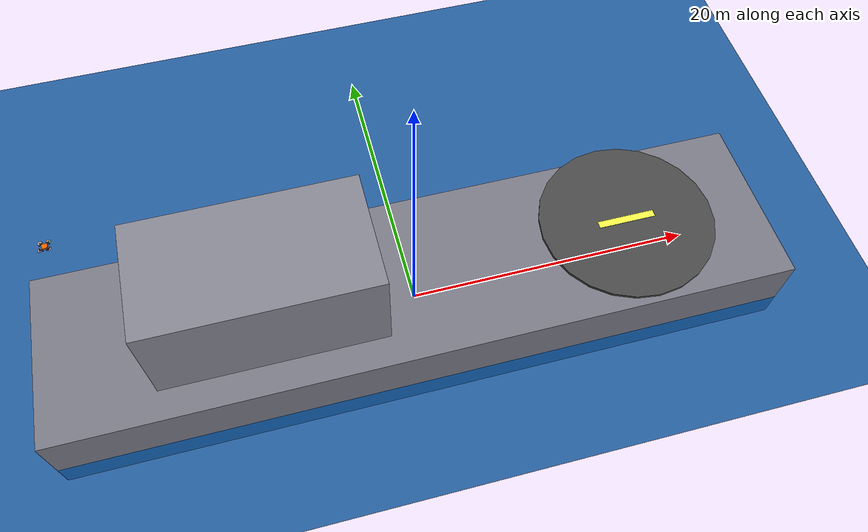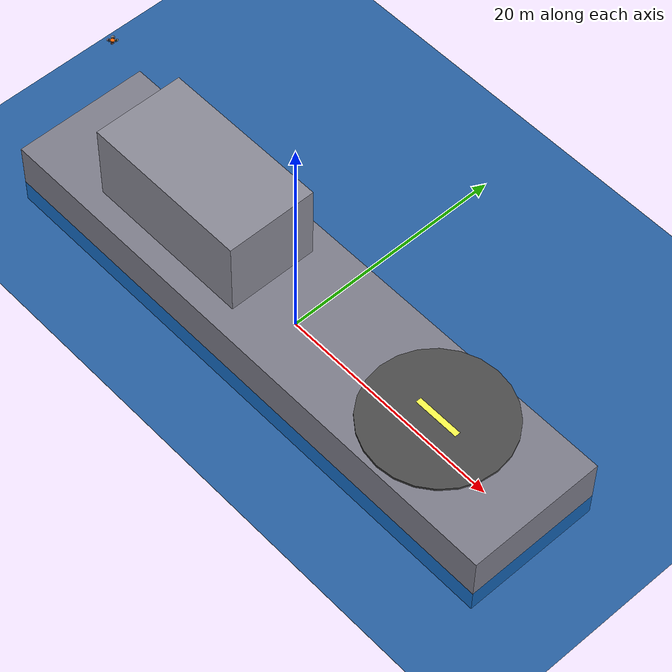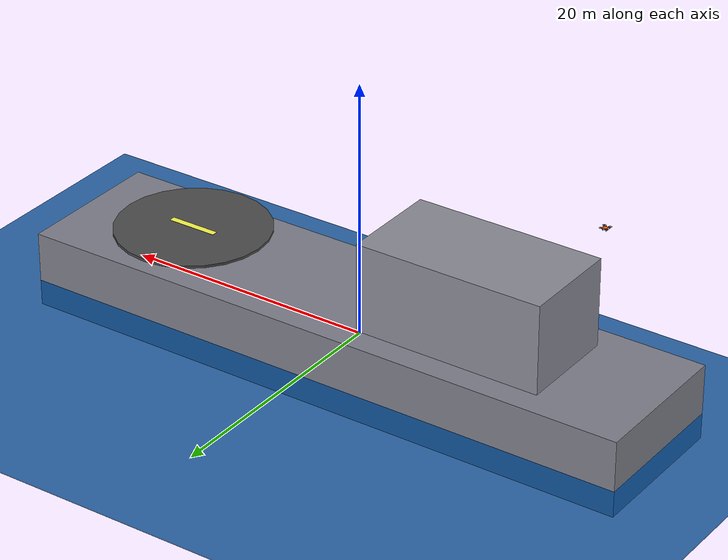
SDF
<?xml version="1.0" ?>
<sdf version="1.9">
  <world name="ship_landing_debug">

    <!-- Core system plugins -->
    <plugin filename="gz-sim-physics-system" name="gz::sim::systems::Physics"/>
    <plugin filename="gz-sim-scene-broadcaster-system" name="gz::sim::systems::SceneBroadcaster"/>
    <plugin filename="gz-sim-user-commands-system" name="gz::sim::systems::UserCommands"/>
    <plugin filename="gz-sim-sensors-system" name="gz::sim::systems::Sensors">
      <render_engine>ogre</render_engine>
    </plugin>
    <plugin filename="gz-sim-apply-link-wrench-system" name="gz::sim::systems::ApplyLinkWrench"/>
    <plugin filename="gz-sim-contact-system" name="gz::sim::systems::Contact"/>

    <!-- Physics - smaller step for stability -->
    <physics name="default_physics" type="dart">
      <max_step_size>0.001</max_step_size>
      <real_time_factor>1</real_time_factor>
      <real_time_update_rate>1000</real_time_update_rate>
      <dart>
        <collision_detector>bullet</collision_detector>
      </dart>
    </physics>

    <!-- Scene -->
    <scene>
      <ambient>0.6 0.6 0.7 1</ambient>
      <background>0.4 0.5 0.6 1</background>
      <shadows>true</shadows>
    </scene>

    <light type="directional" name="sun">
      <cast_shadows>true</cast_shadows>
      <pose>0 0 100 0 0 0</pose>
      <diffuse>0.8 0.8 0.8 1</diffuse>
      <specular>0.3 0.3 0.3 1</specular>
      <direction>-0.5 0.3 -1</direction>
    </light>

    <!-- Ocean visual -->
    <model name="ocean">
      <static>true</static>
      <pose>0 0 -1 0 0 0</pose>
      <link name="link">
        <visual name="water">
          <geometry>
            <box><size>500 500 0.1</size></box>
          </geometry>
          <material>
            <ambient>0.0 0.2 0.4 0.8</ambient>
            <diffuse>0.0 0.3 0.6 0.8</diffuse>
          </material>
        </visual>
      </link>
    </model>

    <!-- Ship with PosePublisher -->
    <model name="ship">
      <static>true</static>
      <pose>0 0 0 0 0 0</pose>

      <!-- Pose Publisher Plugin - broadcasts ship pose -->
      <plugin filename="gz-sim-pose-publisher-system"
              name="gz::sim::systems::PosePublisher">
        <publish_link_pose>true</publish_link_pose>
        <publish_model_pose>true</publish_model_pose>
        <publish_nested_model_pose>false</publish_nested_model_pose>
        <use_pose_vector_msg>true</use_pose_vector_msg>
        <update_frequency>50</update_frequency>
      </plugin>

      <link name="hull">
        <inertial>
          <mass>100000</mass>
          <inertia>
            <ixx>1000000</ixx>
            <iyy>5000000</iyy>
            <izz>5000000</izz>
          </inertia>
        </inertial>

        <!-- Main hull collision -->
        <collision name="hull_collision">
          <pose>0 0 0 0 0 0</pose>
          <geometry>
            <box><size>50 12 6</size></box>
          </geometry>
          <surface>
            <friction>
              <ode>
                <mu>1.0</mu>
                <mu2>1.0</mu2>
              </ode>
            </friction>
            <contact>
              <ode>
                <kp>1e6</kp>
                <kd>100</kd>
              </ode>
            </contact>
          </surface>
        </collision>

        <!-- Deck collision - high friction for landing -->
        <collision name="deck_collision">
          <pose>0 0 3.5 0 0 0</pose>
          <geometry>
            <box><size>50 12 1</size></box>
          </geometry>
          <surface>
            <friction>
              <ode>
                <mu>2.0</mu>
                <mu2>2.0</mu2>
                <fdir1>1 0 0</fdir1>
              </ode>
              <bullet>
                <friction>2.0</friction>
                <friction2>2.0</friction2>
              </bullet>
            </friction>
            <contact>
              <ode>
                <kp>5e5</kp>
                <kd>500</kd>
                <max_vel>0.1</max_vel>
                <min_depth>0.001</min_depth>
              </ode>
              <bullet>
                <soft_cfm>0.001</soft_cfm>
                <soft_erp>0.8</soft_erp>
              </bullet>
            </contact>
            <bounce>
              <restitution_coefficient>0.1</restitution_coefficient>
              <threshold>0.5</threshold>
            </bounce>
          </surface>
        </collision>

        <!-- Helipad collision - very high friction -->
        <collision name="helipad_collision">
          <pose>15 0 4.1 0 0 0</pose>
          <geometry>
            <cylinder>
              <radius>6</radius>
              <length>0.2</length>
            </cylinder>
          </geometry>
          <surface>
            <friction>
              <ode>
                <mu>3.0</mu>
                <mu2>3.0</mu2>
              </ode>
            </friction>
            <contact>
              <ode>
                <kp>5e5</kp>
                <kd>500</kd>
                <max_vel>0.05</max_vel>
                <min_depth>0.001</min_depth>
              </ode>
            </contact>
            <bounce>
              <restitution_coefficient>0.05</restitution_coefficient>
              <threshold>0.3</threshold>
            </bounce>
          </surface>
        </collision>

        <!-- Hull visual -->
        <visual name="hull_visual">
          <pose>0 0 0 0 0 0</pose>
          <geometry>
            <box><size>50 12 6</size></box>
          </geometry>
          <material>
            <ambient>0.3 0.3 0.35 1</ambient>
            <diffuse>0.5 0.5 0.55 1</diffuse>
          </material>
        </visual>

        <!-- Superstructure -->
        <visual name="superstructure">
          <pose>-10 0 6 0 0 0</pose>
          <geometry>
            <box><size>15 8 8</size></box>
          </geometry>
          <material>
            <ambient>0.35 0.35 0.4 1</ambient>
            <diffuse>0.55 0.55 0.6 1</diffuse>
          </material>
        </visual>

        <!-- Helipad -->
        <visual name="helipad">
          <pose>15 0 4.0 0 0 0</pose>
          <geometry>
            <cylinder>
              <radius>6</radius>
              <length>0.2</length>
            </cylinder>
          </geometry>
          <material>
            <ambient>0.2 0.2 0.2 1</ambient>
            <diffuse>0.3 0.3 0.3 1</diffuse>
          </material>
        </visual>

        <!-- Helipad H marking -->
        <visual name="helipad_h">
          <pose>15 0 4.11 0 0 0</pose>
          <geometry>
            <box><size>4 0.5 0.01</size></box>
          </geometry>
          <material>
            <ambient>0.9 0.9 0.2 1</ambient>
            <diffuse>1.0 1.0 0.3 1</diffuse>
          </material>
        </visual>
      </link>
    </model>

    <!-- Quadcopter with contact sensor and pose publisher -->
    <model name="quadcopter">
      <pose>-20 0 15 0 0 0</pose>

      <!-- Pose Publisher for quadcopter -->
      <plugin filename="gz-sim-pose-publisher-system"
              name="gz::sim::systems::PosePublisher">
        <publish_link_pose>true</publish_link_pose>
        <publish_model_pose>true</publish_model_pose>
        <use_pose_vector_msg>true</use_pose_vector_msg>
        <update_frequency>100</update_frequency>
      </plugin>

      <link name="base_link">
        <inertial>
          <mass>2.0</mass>
          <inertia>
            <ixx>0.02</ixx>
            <iyy>0.02</iyy>
            <izz>0.04</izz>
          </inertia>
        </inertial>

        <collision name="body_collision">
          <geometry>
            <box><size>0.4 0.4 0.15</size></box>
          </geometry>
          <surface>
            <friction>
              <ode>
                <mu>1.5</mu>
                <mu2>1.5</mu2>
              </ode>
            </friction>
            <contact>
              <ode>
                <kp>1e5</kp>
                <kd>100</kd>
              </ode>
            </contact>
          </surface>
        </collision>

        <!-- Landing gear collisions with damping -->
        <collision name="gear_fl">
          <pose>0.12 0.12 -0.15 0 0 0</pose>
          <geometry>
            <sphere><radius>0.02</radius></sphere>
          </geometry>
          <surface>
            <friction>
              <ode><mu>2.0</mu><mu2>2.0</mu2></ode>
            </friction>
            <contact>
              <ode>
                <kp>5e4</kp>
                <kd>200</kd>
                <max_vel>0.5</max_vel>
              </ode>
            </contact>
          </surface>
        </collision>
        <collision name="gear_fr">
          <pose>0.12 -0.12 -0.15 0 0 0</pose>
          <geometry>
            <sphere><radius>0.02</radius></sphere>
          </geometry>
          <surface>
            <friction>
              <ode><mu>2.0</mu><mu2>2.0</mu2></ode>
            </friction>
            <contact>
              <ode>
                <kp>5e4</kp>
                <kd>200</kd>
                <max_vel>0.5</max_vel>
              </ode>
            </contact>
          </surface>
        </collision>
        <collision name="gear_bl">
          <pose>-0.12 0.12 -0.15 0 0 0</pose>
          <geometry>
            <sphere><radius>0.02</radius></sphere>
          </geometry>
          <surface>
            <friction>
              <ode><mu>2.0</mu><mu2>2.0</mu2></ode>
            </friction>
            <contact>
              <ode>
                <kp>5e4</kp>
                <kd>200</kd>
                <max_vel>0.5</max_vel>
              </ode>
            </contact>
          </surface>
        </collision>
        <collision name="gear_br">
          <pose>-0.12 -0.12 -0.15 0 0 0</pose>
          <geometry>
            <sphere><radius>0.02</radius></sphere>
          </geometry>
          <surface>
            <friction>
              <ode><mu>2.0</mu><mu2>2.0</mu2></ode>
            </friction>
            <contact>
              <ode>
                <kp>5e4</kp>
                <kd>200</kd>
                <max_vel>0.5</max_vel>
              </ode>
            </contact>
          </surface>
        </collision>

        <!-- Bright orange body -->
        <visual name="body">
          <geometry>
            <box><size>0.3 0.3 0.1</size></box>
          </geometry>
          <material>
            <ambient>0.9 0.3 0.0 1</ambient>
            <diffuse>1.0 0.4 0.0 1</diffuse>
          </material>
        </visual>

        <!-- Arms -->
        <visual name="arm_fr">
          <pose>0.18 -0.18 0 0 0 0.785</pose>
          <geometry><box><size>0.28 0.03 0.02</size></box></geometry>
          <material><diffuse>0.2 0.2 0.2 1</diffuse></material>
        </visual>
        <visual name="arm_fl">
          <pose>0.18 0.18 0 0 0 -0.785</pose>
          <geometry><box><size>0.28 0.03 0.02</size></box></geometry>
          <material><diffuse>0.2 0.2 0.2 1</diffuse></material>
        </visual>
        <visual name="arm_br">
          <pose>-0.18 -0.18 0 0 0 -0.785</pose>
          <geometry><box><size>0.28 0.03 0.02</size></box></geometry>
          <material><diffuse>0.2 0.2 0.2 1</diffuse></material>
        </visual>
        <visual name="arm_bl">
          <pose>-0.18 0.18 0 0 0 0.785</pose>
          <geometry><box><size>0.28 0.03 0.02</size></box></geometry>
          <material><diffuse>0.2 0.2 0.2 1</diffuse></material>
        </visual>

        <!-- Motors -->
        <visual name="motor_fr">
          <pose>0.22 -0.22 0.03 0 0 0</pose>
          <geometry><cylinder><radius>0.035</radius><length>0.05</length></cylinder></geometry>
          <material><diffuse>0.9 0.1 0.1 1</diffuse></material>
        </visual>
        <visual name="motor_fl">
          <pose>0.22 0.22 0.03 0 0 0</pose>
          <geometry><cylinder><radius>0.035</radius><length>0.05</length></cylinder></geometry>
          <material><diffuse>0.1 0.9 0.1 1</diffuse></material>
        </visual>
        <visual name="motor_br">
          <pose>-0.22 -0.22 0.03 0 0 0</pose>
          <geometry><cylinder><radius>0.035</radius><length>0.05</length></cylinder></geometry>
          <material><diffuse>0.1 0.1 0.9 1</diffuse></material>
        </visual>
        <visual name="motor_bl">
          <pose>-0.22 0.22 0.03 0 0 0</pose>
          <geometry><cylinder><radius>0.035</radius><length>0.05</length></cylinder></geometry>
          <material><diffuse>0.9 0.9 0.1 1</diffuse></material>
        </visual>

        <!-- Propellers -->
        <visual name="prop_fr">
          <pose>0.22 -0.22 0.06 0 0 0</pose>
          <geometry><cylinder><radius>0.13</radius><length>0.005</length></cylinder></geometry>
          <material><diffuse>0.3 0.3 0.3 0.5</diffuse></material>
        </visual>
        <visual name="prop_fl">
          <pose>0.22 0.22 0.06 0 0 0</pose>
          <geometry><cylinder><radius>0.13</radius><length>0.005</length></cylinder></geometry>
          <material><diffuse>0.3 0.3 0.3 0.5</diffuse></material>
        </visual>
        <visual name="prop_br">
          <pose>-0.22 -0.22 0.06 0 0 0</pose>
          <geometry><cylinder><radius>0.13</radius><length>0.005</length></cylinder></geometry>
          <material><diffuse>0.3 0.3 0.3 0.5</diffuse></material>
        </visual>
        <visual name="prop_bl">
          <pose>-0.22 0.22 0.06 0 0 0</pose>
          <geometry><cylinder><radius>0.13</radius><length>0.005</length></cylinder></geometry>
          <material><diffuse>0.3 0.3 0.3 0.5</diffuse></material>
        </visual>

        <!-- Landing gear visuals -->
        <visual name="gear_fl_vis">
          <pose>0.12 0.12 -0.1 0 0 0</pose>
          <geometry><cylinder><radius>0.012</radius><length>0.15</length></cylinder></geometry>
          <material><diffuse>0.15 0.15 0.15 1</diffuse></material>
        </visual>
        <visual name="gear_fr_vis">
          <pose>0.12 -0.12 -0.1 0 0 0</pose>
          <geometry><cylinder><radius>0.012</radius><length>0.15</length></cylinder></geometry>
          <material><diffuse>0.15 0.15 0.15 1</diffuse></material>
        </visual>
        <visual name="gear_bl_vis">
          <pose>-0.12 0.12 -0.1 0 0 0</pose>
          <geometry><cylinder><radius>0.012</radius><length>0.15</length></cylinder></geometry>
          <material><diffuse>0.15 0.15 0.15 1</diffuse></material>
        </visual>
        <visual name="gear_br_vis">
          <pose>-0.12 -0.12 -0.1 0 0 0</pose>
          <geometry><cylinder><radius>0.012</radius><length>0.15</length></cylinder></geometry>
          <material><diffuse>0.15 0.15 0.15 1</diffuse></material>
        </visual>
      </link>
    </model>

    <!-- Camera -->
    <gui fullscreen='0'>
      <camera name='user_camera'>
        <pose>-20 -20 15 0 0.35 0.8</pose>
        <view_controller>orbit</view_controller>
      </camera>
    </gui>

  </world>
</sdf>
